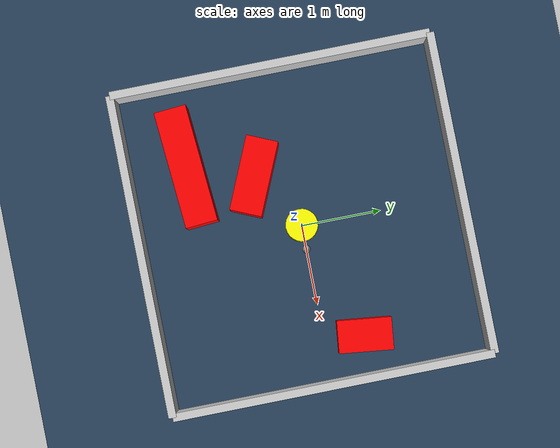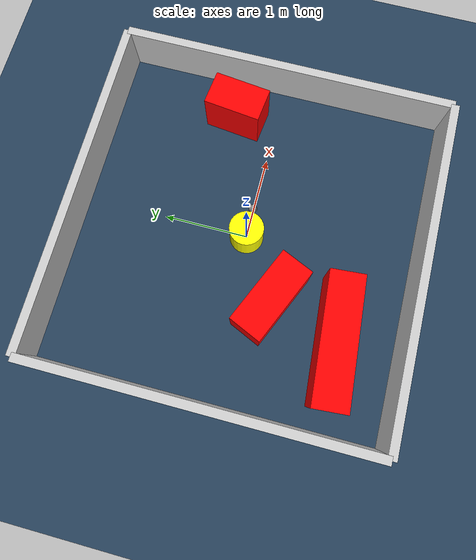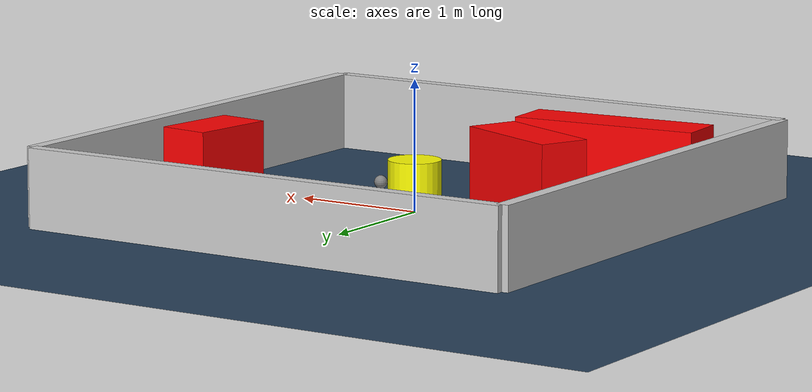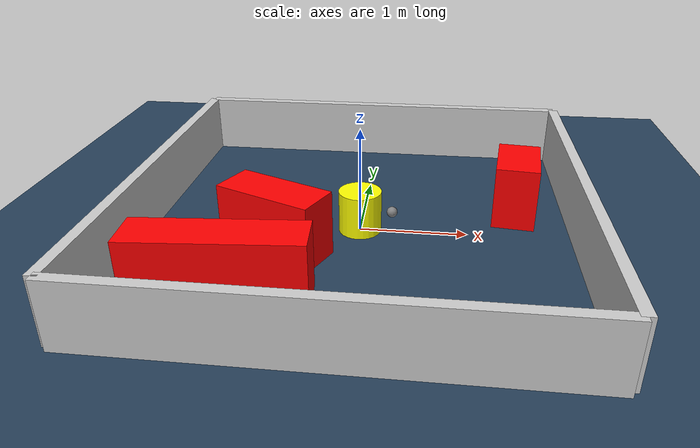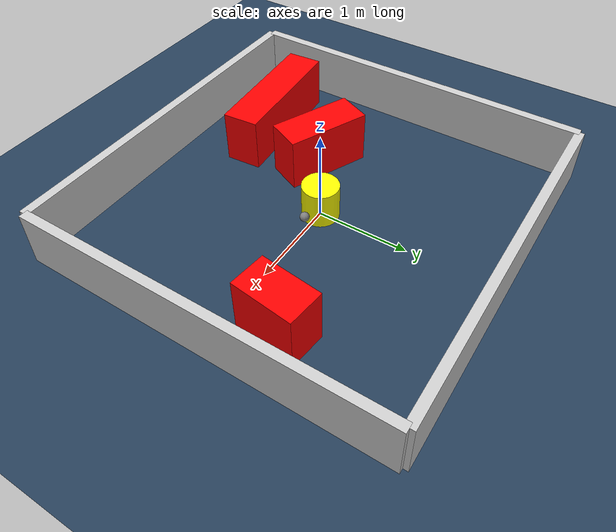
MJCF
<?xml version="1.0" ?>
<mujoco model="generated_environment">
  <option timestep="0.01" integrator="RK4" cone="elliptic"/>
  <default>
    <geom density="1"/>
  </default>
  <asset>
    <texture builtin="gradient" height="3072" rgb1="0.3 0.5 0.7" rgb2="0 0 0" type="skybox" width="512"/>
    <texture builtin="checker" height="300" mark="edge" markrgb="0.8 0.8 0.8" name="groundplane" rgb1="0.2 0.3 0.4" rgb2="0.1 0.2 0.3" type="2d" width="300"/>
    <material name="groundplane" reflectance="0.2" texrepeat="5 5" texture="groundplane" texuniform="true"/>
    <material name="robot" rgba="0.0 1.0 0.0 1"/>
  </asset>
  <worldbody>
    <light dir="0 0 -1" directional="true" pos="0 0 1.5"/>
    <geom condim="4" friction="1.0 0.005 0.001" material="groundplane" name="floor" size="0 0 0.05" type="plane"/>
    <body name="walls">
      <geom name="wall_1" condim="4" pos="-2.0 0.0 0.3" rgba="0.800000011920929 0.800000011920929 0.800000011920929 1.0" size="0.05 2.0 0.3" type="box"/>
      <geom name="wall_2" condim="4" pos="2.0 0.0 0.3" rgba="0.800000011920929 0.800000011920929 0.800000011920929 1.0" size="0.05 2.0 0.3" type="box"/>
      <geom name="wall_3" condim="4" pos="0.0 -2.0 0.3" rgba="0.800000011920929 0.800000011920929 0.800000011920929 1.0" size="2.0 0.05 0.3" type="box"/>
      <geom name="wall_4" condim="4" pos="0.0 2.0 0.3" rgba="0.800000011920929 0.800000011920929 0.800000011920929 1.0" size="2.0 0.05 0.3" type="box"/>
    </body>
    <body name="robot">
      <joint name="joint_x" type="slide" pos="0 0 0" axis="1 0 0"/>
      <joint name="joint_y" type="slide" pos="0 0 0" axis="0 1 0"/>
      <geom name="robot" type="sphere" pos="0.3 0.0 0.2" size="0.05" mass="5." friction="1.0 0.005 0.0001" condim="4" rgba="0.5 0.5 0.5 1.0"/>
      <site name="sensor_ball"/>
    </body>
    <body name="obstacle_movable_1">
      <geom name="obstacle_movable_1" condim="4" pos="0.0 0.0 0.2" euler="0 0 0.0" friction="1.0 0.005 0.001" rgba="1.0 1.0 0.0 1.0" size="0.2 0.2 0.0" type="cylinder" mass="0.1"/>
      <joint type="free"/>
    </body>
    <body name="obstacle_2_static">
      <geom name="obstacle_2_static" condim="4" pos="-0.9724217625394453 -1.252092008499908 0.3" euler="0 0 184.41495464936202" friction="1.0 0.005 0.001" rgba="1 0 0 1" size="0.7308025100118609 0.2 0.3" type="box"/>
    </body>
    <body name="obstacle_3_static">
      <geom name="obstacle_3_static" condim="4" pos="1.4738681605468429 0.49432709376537054 0.3" euler="0 0 263.35045462065017" friction="1.0 0.005 0.001" rgba="1 0 0 1" size="0.33530978652072563 0.2 0.3" type="box"/>
    </body>
    <body name="obstacle_4_static">
      <geom name="obstacle_4_static" condim="4" pos="-0.6994314085281926 -0.4565552399747308 0.3" euler="0 0 336.2163432706169" friction="1.0 0.005 0.001" rgba="1 0 0 1" size="0.46958665062064686 0.2 0.3" type="box"/>
    </body>
  </worldbody>
  <actuator>
    <motor name="actuator_x" joint="joint_x" gear="1" ctrlrange="-1 1"/>
    <motor name="actuator_y" joint="joint_y" gear="1" ctrlrange="-1 1"/>
  </actuator>
</mujoco>
